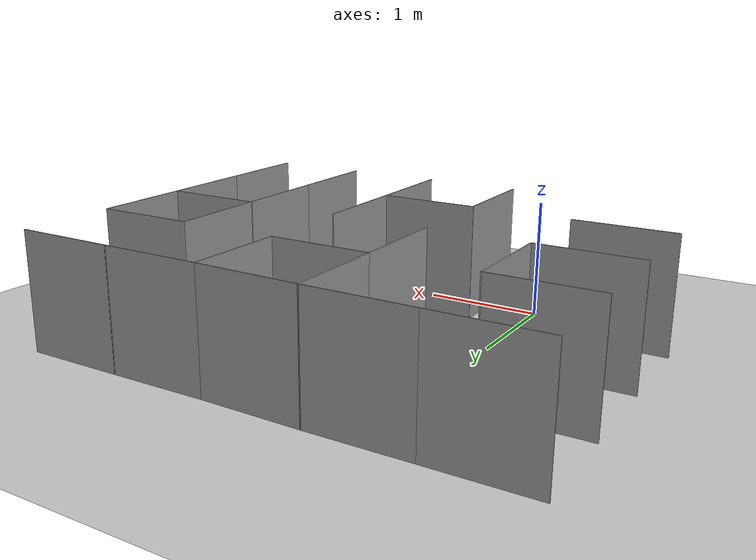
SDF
<sdf version="1.7">
 <world name="default">
  <include><uri>model://sun</uri></include>
  <include><uri>model://ground_plane</uri></include>
  <model name="Lab2">
   <link name="Wall_104">
    <pose>-0.846372 0.424965 0 0 -0 0</pose>
    <visual name="Wall_104_Visual">
     <pose>0 0 0.5 0 -0 0</pose>
     <geometry><box><size>0.86 0.01 1</size></box></geometry>
     <material>
      <script><uri>file://media/materials/scripts/gazebo.material</uri><name>Gazebo/Grey</name></script>
      <ambient>1 1 1 1</ambient>
      <shader type="pixel"/>
     </material>
     <meta><layer>0</layer></meta>
    </visual>
    <collision name="Wall_104_Collision">
     <pose>0 0 0.5 0 -0 0</pose>
     <geometry><box><size>0.86 0.01 1</size></box></geometry>
     <surface>
      <friction>
       <ode><mu>1</mu><mu2>1</mu2><fdir1>0 0 0</fdir1><slip1>0</slip1><slip2>0</slip2></ode>
       <torsional>
        <coefficient>1</coefficient>
        <patch_radius>0</patch_radius>
        <surface_radius>0</surface_radius>
        <use_patch_radius>1</use_patch_radius>
        <ode><slip>0</slip></ode>
       </torsional>
      </friction>
      <bounce><restitution_coefficient>0</restitution_coefficient><threshold>1e+06</threshold></bounce>
      <contact>
       <collide_without_contact>0</collide_without_contact>
       <collide_without_contact_bitmask>1</collide_without_contact_bitmask>
       <collide_bitmask>1</collide_bitmask>
       <ode>
        <soft_cfm>0</soft_cfm>
        <soft_erp>0.2</soft_erp>
        <kp>1e+13</kp>
        <kd>1</kd>
        <max_vel>0.01</max_vel>
        <min_depth>0</min_depth>
       </ode>
       <bullet>
        <split_impulse>1</split_impulse>
        <split_impulse_penetration_threshold>-0.01</split_impulse_penetration_threshold>
        <soft_cfm>0</soft_cfm>
        <soft_erp>0.2</soft_erp>
        <kp>1e+13</kp>
        <kd>1</kd>
       </bullet>
      </contact>
     </surface>
    </collision>
   </link>
   <link name="Wall_108">
    <pose>0.857128 0.424965 0 0 -0 0</pose>
    <visual name="Wall_108_Visual">
     <pose>0 0 0.5 0 -0 0</pose>
     <geometry><box><size>0.853 0.01 1</size></box></geometry>
     <material>
      <script><uri>file://media/materials/scripts/gazebo.material</uri><name>Gazebo/Grey</name></script>
      <ambient>1 1 1 1</ambient>
      <shader type="pixel"/>
     </material>
     <meta><layer>0</layer></meta>
    </visual>
    <collision name="Wall_108_Collision">
     <pose>0 0 0.5 0 -0 0</pose>
     <geometry><box><size>0.853 0.01 1</size></box></geometry>
     <surface>
      <friction>
       <ode><mu>1</mu><mu2>1</mu2><fdir1>0 0 0</fdir1><slip1>0</slip1><slip2>0</slip2></ode>
       <torsional>
        <coefficient>1</coefficient>
        <patch_radius>0</patch_radius>
        <surface_radius>0</surface_radius>
        <use_patch_radius>1</use_patch_radius>
        <ode><slip>0</slip></ode>
       </torsional>
      </friction>
      <bounce><restitution_coefficient>0</restitution_coefficient><threshold>1e+06</threshold></bounce>
      <contact>
       <collide_without_contact>0</collide_without_contact>
       <collide_without_contact_bitmask>1</collide_without_contact_bitmask>
       <collide_bitmask>1</collide_bitmask>
       <ode>
        <soft_cfm>0</soft_cfm>
        <soft_erp>0.2</soft_erp>
        <kp>1e+13</kp>
        <kd>1</kd>
        <max_vel>0.01</max_vel>
        <min_depth>0</min_depth>
       </ode>
       <bullet>
        <split_impulse>1</split_impulse>
        <split_impulse_penetration_threshold>-0.01</split_impulse_penetration_threshold>
        <soft_cfm>0</soft_cfm>
        <soft_erp>0.2</soft_erp>
        <kp>1e+13</kp>
        <kd>1</kd>
       </bullet>
      </contact>
     </surface>
    </collision>
   </link>
   <link name="Wall_109">
    <pose>1.27977 0.853028 0 0 -0 1.56812</pose>
    <visual name="Wall_109_Visual">
     <pose>0 0 0.5 0 -0 0</pose>
     <geometry><box><size>0.866126 0.01 1</size></box></geometry>
     <material>
      <script><uri>file://media/materials/scripts/gazebo.material</uri><name>Gazebo/Grey</name></script>
      <ambient>1 1 1 1</ambient>
      <shader type="pixel"/>
     </material>
     <meta><layer>0</layer></meta>
    </visual>
    <collision name="Wall_109_Collision">
     <pose>0 0 0.5 0 -0 0</pose>
     <geometry><box><size>0.866126 0.01 1</size></box></geometry>
     <surface>
      <friction>
       <ode><mu>1</mu><mu2>1</mu2><fdir1>0 0 0</fdir1><slip1>0</slip1><slip2>0</slip2></ode>
       <torsional>
        <coefficient>1</coefficient>
        <patch_radius>0</patch_radius>
        <surface_radius>0</surface_radius>
        <use_patch_radius>1</use_patch_radius>
        <ode><slip>0</slip></ode>
       </torsional>
      </friction>
      <bounce><restitution_coefficient>0</restitution_coefficient><threshold>1e+06</threshold></bounce>
      <contact>
       <collide_without_contact>0</collide_without_contact>
       <collide_without_contact_bitmask>1</collide_without_contact_bitmask>
       <collide_bitmask>1</collide_bitmask>
       <ode>
        <soft_cfm>0</soft_cfm>
        <soft_erp>0.2</soft_erp>
        <kp>1e+13</kp>
        <kd>1</kd>
        <max_vel>0.01</max_vel>
        <min_depth>0</min_depth>
       </ode>
       <bullet>
        <split_impulse>1</split_impulse>
        <split_impulse_penetration_threshold>-0.01</split_impulse_penetration_threshold>
        <soft_cfm>0</soft_cfm>
        <soft_erp>0.2</soft_erp>
        <kp>1e+13</kp>
        <kd>1</kd>
       </bullet>
      </contact>
     </surface>
    </collision>
   </link>
   <link name="Wall_111">
    <pose>2.12863 0.849965 0 0 0 -1.5708</pose>
    <visual name="Wall_111_Visual">
     <pose>0 0 0.5 0 -0 0</pose>
     <geometry><box><size>0.86 0.01 1</size></box></geometry>
     <material>
      <script><uri>file://media/materials/scripts/gazebo.material</uri><name>Gazebo/Grey</name></script>
      <ambient>1 1 1 1</ambient>
      <shader type="pixel"/>
     </material>
     <meta><layer>0</layer></meta>
    </visual>
    <collision name="Wall_111_Collision">
     <pose>0 0 0.5 0 -0 0</pose>
     <geometry><box><size>0.86 0.01 1</size></box></geometry>
     <surface>
      <friction>
       <ode><mu>1</mu><mu2>1</mu2><fdir1>0 0 0</fdir1><slip1>0</slip1><slip2>0</slip2></ode>
       <torsional>
        <coefficient>1</coefficient>
        <patch_radius>0</patch_radius>
        <surface_radius>0</surface_radius>
        <use_patch_radius>1</use_patch_radius>
        <ode><slip>0</slip></ode>
       </torsional>
      </friction>
      <bounce><restitution_coefficient>0</restitution_coefficient><threshold>1e+06</threshold></bounce>
      <contact>
       <collide_without_contact>0</collide_without_contact>
       <collide_without_contact_bitmask>1</collide_without_contact_bitmask>
       <collide_bitmask>1</collide_bitmask>
       <ode>
        <soft_cfm>0</soft_cfm>
        <soft_erp>0.2</soft_erp>
        <kp>1e+13</kp>
        <kd>1</kd>
        <max_vel>0.01</max_vel>
        <min_depth>0</min_depth>
       </ode>
       <bullet>
        <split_impulse>1</split_impulse>
        <split_impulse_penetration_threshold>-0.01</split_impulse_penetration_threshold>
        <soft_cfm>0</soft_cfm>
        <soft_erp>0.2</soft_erp>
        <kp>1e+13</kp>
        <kd>1</kd>
       </bullet>
      </contact>
     </surface>
    </collision>
   </link>
   <link name="Wall_115">
    <pose>2.55363 1.27496 0 0 -0 3.14159</pose>
    <visual name="Wall_115_Visual">
     <pose>0 0 0.5 0 -0 0</pose>
     <geometry><box><size>0.86 0.01 1</size></box></geometry>
     <material>
      <script><uri>file://media/materials/scripts/gazebo.material</uri><name>Gazebo/Grey</name></script>
      <ambient>1 1 1 1</ambient>
      <shader type="pixel"/>
     </material>
     <meta><layer>0</layer></meta>
    </visual>
    <collision name="Wall_115_Collision">
     <pose>0 0 0.5 0 -0 0</pose>
     <geometry><box><size>0.86 0.01 1</size></box></geometry>
     <surface>
      <friction>
       <ode><mu>1</mu><mu2>1</mu2><fdir1>0 0 0</fdir1><slip1>0</slip1><slip2>0</slip2></ode>
       <torsional>
        <coefficient>1</coefficient>
        <patch_radius>0</patch_radius>
        <surface_radius>0</surface_radius>
        <use_patch_radius>1</use_patch_radius>
        <ode><slip>0</slip></ode>
       </torsional>
      </friction>
      <bounce><restitution_coefficient>0</restitution_coefficient><threshold>1e+06</threshold></bounce>
      <contact>
       <collide_without_contact>0</collide_without_contact>
       <collide_without_contact_bitmask>1</collide_without_contact_bitmask>
       <collide_bitmask>1</collide_bitmask>
       <ode>
        <soft_cfm>0</soft_cfm>
        <soft_erp>0.2</soft_erp>
        <kp>1e+13</kp>
        <kd>1</kd>
        <max_vel>0.01</max_vel>
        <min_depth>0</min_depth>
       </ode>
       <bullet>
        <split_impulse>1</split_impulse>
        <split_impulse_penetration_threshold>-0.01</split_impulse_penetration_threshold>
        <soft_cfm>0</soft_cfm>
        <soft_erp>0.2</soft_erp>
        <kp>1e+13</kp>
        <kd>1</kd>
       </bullet>
      </contact>
     </surface>
    </collision>
   </link>
   <link name="Wall_116">
    <pose>2.12863 1.69996 0 0 -0 1.5708</pose>
    <visual name="Wall_116_Visual">
     <pose>0 0 0.5 0 -0 0</pose>
     <geometry><box><size>0.859555 0.01 1</size></box></geometry>
     <material>
      <script><uri>file://media/materials/scripts/gazebo.material</uri><name>Gazebo/Grey</name></script>
      <ambient>1 1 1 1</ambient>
      <shader type="pixel"/>
     </material>
     <meta><layer>0</layer></meta>
    </visual>
    <collision name="Wall_116_Collision">
     <pose>0 0 0.5 0 -0 0</pose>
     <geometry><box><size>0.859555 0.01 1</size></box></geometry>
     <surface>
      <friction>
       <ode><mu>1</mu><mu2>1</mu2><fdir1>0 0 0</fdir1><slip1>0</slip1><slip2>0</slip2></ode>
       <torsional>
        <coefficient>1</coefficient>
        <patch_radius>0</patch_radius>
        <surface_radius>0</surface_radius>
        <use_patch_radius>1</use_patch_radius>
        <ode><slip>0</slip></ode>
       </torsional>
      </friction>
      <bounce><restitution_coefficient>0</restitution_coefficient><threshold>1e+06</threshold></bounce>
      <contact>
       <collide_without_contact>0</collide_without_contact>
       <collide_without_contact_bitmask>1</collide_without_contact_bitmask>
       <collide_bitmask>1</collide_bitmask>
       <ode>
        <soft_cfm>0</soft_cfm>
        <soft_erp>0.2</soft_erp>
        <kp>1e+13</kp>
        <kd>1</kd>
        <max_vel>0.01</max_vel>
        <min_depth>0</min_depth>
       </ode>
       <bullet>
        <split_impulse>1</split_impulse>
        <split_impulse_penetration_threshold>-0.01</split_impulse_penetration_threshold>
        <soft_cfm>0</soft_cfm>
        <soft_erp>0.2</soft_erp>
        <kp>1e+13</kp>
        <kd>1</kd>
       </bullet>
      </contact>
     </surface>
    </collision>
   </link>
   <link name="Wall_120">
    <pose>0.428628 1.69996 0 0 -0 1.5708</pose>
    <visual name="Wall_120_Visual">
     <pose>0 0 0.5 0 -0 0</pose>
     <geometry><box><size>0.859555 0.01 1</size></box></geometry>
     <material>
      <script><uri>file://media/materials/scripts/gazebo.material</uri><name>Gazebo/Grey</name></script>
      <ambient>1 1 1 1</ambient>
      <shader type="pixel"/>
     </material>
     <meta><layer>0</layer></meta>
    </visual>
    <collision name="Wall_120_Collision">
     <pose>0 0 0.5 0 -0 0</pose>
     <geometry><box><size>0.859555 0.01 1</size></box></geometry>
     <surface>
      <friction>
       <ode><mu>1</mu><mu2>1</mu2><fdir1>0 0 0</fdir1><slip1>0</slip1><slip2>0</slip2></ode>
       <torsional>
        <coefficient>1</coefficient>
        <patch_radius>0</patch_radius>
        <surface_radius>0</surface_radius>
        <use_patch_radius>1</use_patch_radius>
        <ode><slip>0</slip></ode>
       </torsional>
      </friction>
      <bounce><restitution_coefficient>0</restitution_coefficient><threshold>1e+06</threshold></bounce>
      <contact>
       <collide_without_contact>0</collide_without_contact>
       <collide_without_contact_bitmask>1</collide_without_contact_bitmask>
       <collide_bitmask>1</collide_bitmask>
       <ode>
        <soft_cfm>0</soft_cfm>
        <soft_erp>0.2</soft_erp>
        <kp>1e+13</kp>
        <kd>1</kd>
        <max_vel>0.01</max_vel>
        <min_depth>0</min_depth>
       </ode>
       <bullet>
        <split_impulse>1</split_impulse>
        <split_impulse_penetration_threshold>-0.01</split_impulse_penetration_threshold>
        <soft_cfm>0</soft_cfm>
        <soft_erp>0.2</soft_erp>
        <kp>1e+13</kp>
        <kd>1</kd>
       </bullet>
      </contact>
     </surface>
    </collision>
   </link>
   <link name="Wall_122">
    <pose>-0.421372 1.69996 0 0 0 -1.5708</pose>
    <visual name="Wall_122_Visual">
     <pose>0 0 0.5 0 -0 0</pose>
     <geometry><box><size>0.86 0.01 1</size></box></geometry>
     <material>
      <script><uri>file://media/materials/scripts/gazebo.material</uri><name>Gazebo/Grey</name></script>
      <ambient>1 1 1 1</ambient>
      <shader type="pixel"/>
     </material>
     <meta><layer>0</layer></meta>
    </visual>
    <collision name="Wall_122_Collision">
     <pose>0 0 0.5 0 -0 0</pose>
     <geometry><box><size>0.86 0.01 1</size></box></geometry>
     <surface>
      <friction>
       <ode><mu>1</mu><mu2>1</mu2><fdir1>0 0 0</fdir1><slip1>0</slip1><slip2>0</slip2></ode>
       <torsional>
        <coefficient>1</coefficient>
        <patch_radius>0</patch_radius>
        <surface_radius>0</surface_radius>
        <use_patch_radius>1</use_patch_radius>
        <ode><slip>0</slip></ode>
       </torsional>
      </friction>
      <bounce><restitution_coefficient>0</restitution_coefficient><threshold>1e+06</threshold></bounce>
      <contact>
       <collide_without_contact>0</collide_without_contact>
       <collide_without_contact_bitmask>1</collide_without_contact_bitmask>
       <collide_bitmask>1</collide_bitmask>
       <ode>
        <soft_cfm>0</soft_cfm>
        <soft_erp>0.2</soft_erp>
        <kp>1e+13</kp>
        <kd>1</kd>
        <max_vel>0.01</max_vel>
        <min_depth>0</min_depth>
       </ode>
       <bullet>
        <split_impulse>1</split_impulse>
        <split_impulse_penetration_threshold>-0.01</split_impulse_penetration_threshold>
        <soft_cfm>0</soft_cfm>
        <soft_erp>0.2</soft_erp>
        <kp>1e+13</kp>
        <kd>1</kd>
       </bullet>
      </contact>
     </surface>
    </collision>
   </link>
   <link name="Wall_123">
    <pose>-0.846372 1.27496 0 0 -0 3.14159</pose>
    <visual name="Wall_123_Visual">
     <pose>0 0 0.5 0 -0 0</pose>
     <geometry><box><size>0.86 0.01 1</size></box></geometry>
     <material>
      <script><uri>file://media/materials/scripts/gazebo.material</uri><name>Gazebo/Grey</name></script>
      <ambient>1 1 1 1</ambient>
      <shader type="pixel"/>
     </material>
     <meta><layer>0</layer></meta>
    </visual>
    <collision name="Wall_123_Collision">
     <pose>0 0 0.5 0 -0 0</pose>
     <geometry><box><size>0.86 0.01 1</size></box></geometry>
     <surface>
      <friction>
       <ode><mu>1</mu><mu2>1</mu2><fdir1>0 0 0</fdir1><slip1>0</slip1><slip2>0</slip2></ode>
       <torsional>
        <coefficient>1</coefficient>
        <patch_radius>0</patch_radius>
        <surface_radius>0</surface_radius>
        <use_patch_radius>1</use_patch_radius>
        <ode><slip>0</slip></ode>
       </torsional>
      </friction>
      <bounce><restitution_coefficient>0</restitution_coefficient><threshold>1e+06</threshold></bounce>
      <contact>
       <collide_without_contact>0</collide_without_contact>
       <collide_without_contact_bitmask>1</collide_without_contact_bitmask>
       <collide_bitmask>1</collide_bitmask>
       <ode>
        <soft_cfm>0</soft_cfm>
        <soft_erp>0.2</soft_erp>
        <kp>1e+13</kp>
        <kd>1</kd>
        <max_vel>0.01</max_vel>
        <min_depth>0</min_depth>
       </ode>
       <bullet>
        <split_impulse>1</split_impulse>
        <split_impulse_penetration_threshold>-0.01</split_impulse_penetration_threshold>
        <soft_cfm>0</soft_cfm>
        <soft_erp>0.2</soft_erp>
        <kp>1e+13</kp>
        <kd>1</kd>
       </bullet>
      </contact>
     </surface>
    </collision>
   </link>
   <link name="Wall_133">
    <pose>-0.846372 2.12496 0 0 -0 0</pose>
    <visual name="Wall_133_Visual">
     <pose>0 0 0.5 0 -0 0</pose>
     <geometry><box><size>0.86 0.01 1</size></box></geometry>
     <material>
      <script><uri>file://media/materials/scripts/gazebo.material</uri><name>Gazebo/Grey</name></script>
      <ambient>1 1 1 1</ambient>
      <shader type="pixel"/>
     </material>
     <meta><layer>0</layer></meta>
    </visual>
    <collision name="Wall_133_Collision">
     <pose>0 0 0.5 0 -0 0</pose>
     <geometry><box><size>0.86 0.01 1</size></box></geometry>
     <surface>
      <friction>
       <ode><mu>1</mu><mu2>1</mu2><fdir1>0 0 0</fdir1><slip1>0</slip1><slip2>0</slip2></ode>
       <torsional>
        <coefficient>1</coefficient>
        <patch_radius>0</patch_radius>
        <surface_radius>0</surface_radius>
        <use_patch_radius>1</use_patch_radius>
        <ode><slip>0</slip></ode>
       </torsional>
      </friction>
      <bounce><restitution_coefficient>0</restitution_coefficient><threshold>1e+06</threshold></bounce>
      <contact>
       <collide_without_contact>0</collide_without_contact>
       <collide_without_contact_bitmask>1</collide_without_contact_bitmask>
       <collide_bitmask>1</collide_bitmask>
       <ode>
        <soft_cfm>0</soft_cfm>
        <soft_erp>0.2</soft_erp>
        <kp>1e+13</kp>
        <kd>1</kd>
        <max_vel>0.01</max_vel>
        <min_depth>0</min_depth>
       </ode>
       <bullet>
        <split_impulse>1</split_impulse>
        <split_impulse_penetration_threshold>-0.01</split_impulse_penetration_threshold>
        <soft_cfm>0</soft_cfm>
        <soft_erp>0.2</soft_erp>
        <kp>1e+13</kp>
        <kd>1</kd>
       </bullet>
      </contact>
     </surface>
    </collision>
   </link>
   <link name="Wall_136">
    <pose>0.428628 2.54996 0 0 0 -1.5708</pose>
    <visual name="Wall_136_Visual">
     <pose>0 0 0.5 0 -0 0</pose>
     <geometry><box><size>0.86 0.01 1</size></box></geometry>
     <material>
      <script><uri>file://media/materials/scripts/gazebo.material</uri><name>Gazebo/Grey</name></script>
      <ambient>1 1 1 1</ambient>
      <shader type="pixel"/>
     </material>
     <meta><layer>0</layer></meta>
    </visual>
    <collision name="Wall_136_Collision">
     <pose>0 0 0.5 0 -0 0</pose>
     <geometry><box><size>0.86 0.01 1</size></box></geometry>
     <surface>
      <friction>
       <ode><mu>1</mu><mu2>1</mu2><fdir1>0 0 0</fdir1><slip1>0</slip1><slip2>0</slip2></ode>
       <torsional>
        <coefficient>1</coefficient>
        <patch_radius>0</patch_radius>
        <surface_radius>0</surface_radius>
        <use_patch_radius>1</use_patch_radius>
        <ode><slip>0</slip></ode>
       </torsional>
      </friction>
      <bounce><restitution_coefficient>0</restitution_coefficient><threshold>1e+06</threshold></bounce>
      <contact>
       <collide_without_contact>0</collide_without_contact>
       <collide_without_contact_bitmask>1</collide_without_contact_bitmask>
       <collide_bitmask>1</collide_bitmask>
       <ode>
        <soft_cfm>0</soft_cfm>
        <soft_erp>0.2</soft_erp>
        <kp>1e+13</kp>
        <kd>1</kd>
        <max_vel>0.01</max_vel>
        <min_depth>0</min_depth>
       </ode>
       <bullet>
        <split_impulse>1</split_impulse>
        <split_impulse_penetration_threshold>-0.01</split_impulse_penetration_threshold>
        <soft_cfm>0</soft_cfm>
        <soft_erp>0.2</soft_erp>
        <kp>1e+13</kp>
        <kd>1</kd>
       </bullet>
      </contact>
     </surface>
    </collision>
   </link>
   <link name="Wall_137">
    <pose>0.850196 2.12496 0 0 -0 0</pose>
    <visual name="Wall_137_Visual">
     <pose>0 0 0.5 0 -0 0</pose>
     <geometry><box><size>0.853136 0.01 1</size></box></geometry>
     <material>
      <script><uri>file://media/materials/scripts/gazebo.material</uri><name>Gazebo/Grey</name></script>
      <ambient>1 1 1 1</ambient>
      <shader type="pixel"/>
     </material>
     <meta><layer>0</layer></meta>
    </visual>
    <collision name="Wall_137_Collision">
     <pose>0 0 0.5 0 -0 0</pose>
     <geometry><box><size>0.853136 0.01 1</size></box></geometry>
     <surface>
      <friction>
       <ode><mu>1</mu><mu2>1</mu2><fdir1>0 0 0</fdir1><slip1>0</slip1><slip2>0</slip2></ode>
       <torsional>
        <coefficient>1</coefficient>
        <patch_radius>0</patch_radius>
        <surface_radius>0</surface_radius>
        <use_patch_radius>1</use_patch_radius>
        <ode><slip>0</slip></ode>
       </torsional>
      </friction>
      <bounce><restitution_coefficient>0</restitution_coefficient><threshold>1e+06</threshold></bounce>
      <contact>
       <collide_without_contact>0</collide_without_contact>
       <collide_without_contact_bitmask>1</collide_without_contact_bitmask>
       <collide_bitmask>1</collide_bitmask>
       <ode>
        <soft_cfm>0</soft_cfm>
        <soft_erp>0.2</soft_erp>
        <kp>1e+13</kp>
        <kd>1</kd>
        <max_vel>0.01</max_vel>
        <min_depth>0</min_depth>
       </ode>
       <bullet>
        <split_impulse>1</split_impulse>
        <split_impulse_penetration_threshold>-0.01</split_impulse_penetration_threshold>
        <soft_cfm>0</soft_cfm>
        <soft_erp>0.2</soft_erp>
        <kp>1e+13</kp>
        <kd>1</kd>
       </bullet>
      </contact>
     </surface>
    </collision>
   </link>
   <link name="Wall_138">
    <pose>1.2802 2.54147 0 0 -0 1.55055</pose>
    <visual name="Wall_138_Visual">
     <pose>0 0 0.5 0 -0 0</pose>
     <geometry><box><size>0.84306 0.01 1</size></box></geometry>
     <material>
      <script><uri>file://media/materials/scripts/gazebo.material</uri><name>Gazebo/Grey</name></script>
      <ambient>1 1 1 1</ambient>
      <shader type="pixel"/>
     </material>
     <meta><layer>0</layer></meta>
    </visual>
    <collision name="Wall_138_Collision">
     <pose>0 0 0.5 0 -0 0</pose>
     <geometry><box><size>0.84306 0.01 1</size></box></geometry>
     <surface>
      <friction>
       <ode><mu>1</mu><mu2>1</mu2><fdir1>0 0 0</fdir1><slip1>0</slip1><slip2>0</slip2></ode>
       <torsional>
        <coefficient>1</coefficient>
        <patch_radius>0</patch_radius>
        <surface_radius>0</surface_radius>
        <use_patch_radius>1</use_patch_radius>
        <ode><slip>0</slip></ode>
       </torsional>
      </friction>
      <bounce><restitution_coefficient>0</restitution_coefficient><threshold>1e+06</threshold></bounce>
      <contact>
       <collide_without_contact>0</collide_without_contact>
       <collide_without_contact_bitmask>1</collide_without_contact_bitmask>
       <collide_bitmask>1</collide_bitmask>
       <ode>
        <soft_cfm>0</soft_cfm>
        <soft_erp>0.2</soft_erp>
        <kp>1e+13</kp>
        <kd>1</kd>
        <max_vel>0.01</max_vel>
        <min_depth>0</min_depth>
       </ode>
       <bullet>
        <split_impulse>1</split_impulse>
        <split_impulse_penetration_threshold>-0.01</split_impulse_penetration_threshold>
        <soft_cfm>0</soft_cfm>
        <soft_erp>0.2</soft_erp>
        <kp>1e+13</kp>
        <kd>1</kd>
       </bullet>
      </contact>
     </surface>
    </collision>
   </link>
   <link name="Wall_141">
    <pose>2.55363 2.12496 0 0 -0 0</pose>
    <visual name="Wall_141_Visual">
     <pose>0 0 0.5 0 -0 0</pose>
     <geometry><box><size>0.86 0.01 1</size></box></geometry>
     <material>
      <script><uri>file://media/materials/scripts/gazebo.material</uri><name>Gazebo/Grey</name></script>
      <ambient>1 1 1 1</ambient>
      <shader type="pixel"/>
     </material>
     <meta><layer>0</layer></meta>
    </visual>
    <collision name="Wall_141_Collision">
     <pose>0 0 0.5 0 -0 0</pose>
     <geometry><box><size>0.86 0.01 1</size></box></geometry>
     <surface>
      <friction>
       <ode><mu>1</mu><mu2>1</mu2><fdir1>0 0 0</fdir1><slip1>0</slip1><slip2>0</slip2></ode>
       <torsional>
        <coefficient>1</coefficient>
        <patch_radius>0</patch_radius>
        <surface_radius>0</surface_radius>
        <use_patch_radius>1</use_patch_radius>
        <ode><slip>0</slip></ode>
       </torsional>
      </friction>
      <bounce><restitution_coefficient>0</restitution_coefficient><threshold>1e+06</threshold></bounce>
      <contact>
       <collide_without_contact>0</collide_without_contact>
       <collide_without_contact_bitmask>1</collide_without_contact_bitmask>
       <collide_bitmask>1</collide_bitmask>
       <ode>
        <soft_cfm>0</soft_cfm>
        <soft_erp>0.2</soft_erp>
        <kp>1e+13</kp>
        <kd>1</kd>
        <max_vel>0.01</max_vel>
        <min_depth>0</min_depth>
       </ode>
       <bullet>
        <split_impulse>1</split_impulse>
        <split_impulse_penetration_threshold>-0.01</split_impulse_penetration_threshold>
        <soft_cfm>0</soft_cfm>
        <soft_erp>0.2</soft_erp>
        <kp>1e+13</kp>
        <kd>1</kd>
       </bullet>
      </contact>
     </surface>
    </collision>
   </link>
   <link name="Wall_143">
    <pose>2.55513 2.96197 0 0 -0 3.14159</pose>
    <visual name="Wall_143_Visual">
     <pose>0 0 0.5 0 -0 0</pose>
     <geometry><box><size>0.865 0.01 1</size></box></geometry>
     <material>
      <script><uri>file://media/materials/scripts/gazebo.material</uri><name>Gazebo/Grey</name></script>
      <ambient>1 1 1 1</ambient>
      <shader type="pixel"/>
     </material>
     <meta><layer>0</layer></meta>
    </visual>
    <collision name="Wall_143_Collision">
     <pose>0 0 0.5 0 -0 0</pose>
     <geometry><box><size>0.865 0.01 1</size></box></geometry>
     <surface>
      <friction>
       <ode><mu>1</mu><mu2>1</mu2><fdir1>0 0 0</fdir1><slip1>0</slip1><slip2>0</slip2></ode>
       <torsional>
        <coefficient>1</coefficient>
        <patch_radius>0</patch_radius>
        <surface_radius>0</surface_radius>
        <use_patch_radius>1</use_patch_radius>
        <ode><slip>0</slip></ode>
       </torsional>
      </friction>
      <bounce><restitution_coefficient>0</restitution_coefficient><threshold>1e+06</threshold></bounce>
      <contact>
       <collide_without_contact>0</collide_without_contact>
       <collide_without_contact_bitmask>1</collide_without_contact_bitmask>
       <collide_bitmask>1</collide_bitmask>
       <ode>
        <soft_cfm>0</soft_cfm>
        <soft_erp>0.2</soft_erp>
        <kp>1e+13</kp>
        <kd>1</kd>
        <max_vel>0.01</max_vel>
        <min_depth>0</min_depth>
       </ode>
       <bullet>
        <split_impulse>1</split_impulse>
        <split_impulse_penetration_threshold>-0.01</split_impulse_penetration_threshold>
        <soft_cfm>0</soft_cfm>
        <soft_erp>0.2</soft_erp>
        <kp>1e+13</kp>
        <kd>1</kd>
       </bullet>
      </contact>
     </surface>
    </collision>
   </link>
   <link name="Wall_144">
    <pose>1.70813 2.95996 0 0 0 -3.13682</pose>
    <visual name="Wall_144_Visual">
     <pose>0 0 0.5 0 -0 0</pose>
     <geometry><box><size>0.84901 0.01 1</size></box></geometry>
     <material>
      <script><uri>file://media/materials/scripts/gazebo.material</uri><name>Gazebo/Grey</name></script>
      <ambient>1 1 1 1</ambient>
      <shader type="pixel"/>
     </material>
     <meta><layer>0</layer></meta>
    </visual>
    <collision name="Wall_144_Collision">
     <pose>0 0 0.5 0 -0 0</pose>
     <geometry><box><size>0.84901 0.01 1</size></box></geometry>
     <surface>
      <friction>
       <ode><mu>1</mu><mu2>1</mu2><fdir1>0 0 0</fdir1><slip1>0</slip1><slip2>0</slip2></ode>
       <torsional>
        <coefficient>1</coefficient>
        <patch_radius>0</patch_radius>
        <surface_radius>0</surface_radius>
        <use_patch_radius>1</use_patch_radius>
        <ode><slip>0</slip></ode>
       </torsional>
      </friction>
      <bounce><restitution_coefficient>0</restitution_coefficient><threshold>1e+06</threshold></bounce>
      <contact>
       <collide_without_contact>0</collide_without_contact>
       <collide_without_contact_bitmask>1</collide_without_contact_bitmask>
       <collide_bitmask>1</collide_bitmask>
       <ode>
        <soft_cfm>0</soft_cfm>
        <soft_erp>0.2</soft_erp>
        <kp>1e+13</kp>
        <kd>1</kd>
        <max_vel>0.01</max_vel>
        <min_depth>0</min_depth>
       </ode>
       <bullet>
        <split_impulse>1</split_impulse>
        <split_impulse_penetration_threshold>-0.01</split_impulse_penetration_threshold>
        <soft_cfm>0</soft_cfm>
        <soft_erp>0.2</soft_erp>
        <kp>1e+13</kp>
        <kd>1</kd>
       </bullet>
      </contact>
     </surface>
    </collision>
   </link>
   <link name="Wall_145">
    <pose>0.858628 2.96646 0 0 -0 3.12183</pose>
    <visual name="Wall_145_Visual">
     <pose>0 0 0.5 0 -0 0</pose>
     <geometry><box><size>0.870168 0.01 1</size></box></geometry>
     <material>
      <script><uri>file://media/materials/scripts/gazebo.material</uri><name>Gazebo/Grey</name></script>
      <ambient>1 1 1 1</ambient>
      <shader type="pixel"/>
     </material>
     <meta><layer>0</layer></meta>
    </visual>
    <collision name="Wall_145_Collision">
     <pose>0 0 0.5 0 -0 0</pose>
     <geometry><box><size>0.870168 0.01 1</size></box></geometry>
     <surface>
      <friction>
       <ode><mu>1</mu><mu2>1</mu2><fdir1>0 0 0</fdir1><slip1>0</slip1><slip2>0</slip2></ode>
       <torsional>
        <coefficient>1</coefficient>
        <patch_radius>0</patch_radius>
        <surface_radius>0</surface_radius>
        <use_patch_radius>1</use_patch_radius>
        <ode><slip>0</slip></ode>
       </torsional>
      </friction>
      <bounce><restitution_coefficient>0</restitution_coefficient><threshold>1e+06</threshold></bounce>
      <contact>
       <collide_without_contact>0</collide_without_contact>
       <collide_without_contact_bitmask>1</collide_without_contact_bitmask>
       <collide_bitmask>1</collide_bitmask>
       <ode>
        <soft_cfm>0</soft_cfm>
        <soft_erp>0.2</soft_erp>
        <kp>1e+13</kp>
        <kd>1</kd>
        <max_vel>0.01</max_vel>
        <min_depth>0</min_depth>
       </ode>
       <bullet>
        <split_impulse>1</split_impulse>
        <split_impulse_penetration_threshold>-0.01</split_impulse_penetration_threshold>
        <soft_cfm>0</soft_cfm>
        <soft_erp>0.2</soft_erp>
        <kp>1e+13</kp>
        <kd>1</kd>
       </bullet>
      </contact>
     </surface>
    </collision>
   </link>
   <link name="Wall_146">
    <pose>0.003628 2.97497 0 0 -0 3.14159</pose>
    <visual name="Wall_146_Visual">
     <pose>0 0 0.5 0 -0 0</pose>
     <geometry><box><size>0.86 0.01 1</size></box></geometry>
     <material>
      <script><uri>file://media/materials/scripts/gazebo.material</uri><name>Gazebo/Grey</name></script>
      <ambient>1 1 1 1</ambient>
      <shader type="pixel"/>
     </material>
     <meta><layer>0</layer></meta>
    </visual>
    <collision name="Wall_146_Collision">
     <pose>0 0 0.5 0 -0 0</pose>
     <geometry><box><size>0.86 0.01 1</size></box></geometry>
     <surface>
      <friction>
       <ode><mu>1</mu><mu2>1</mu2><fdir1>0 0 0</fdir1><slip1>0</slip1><slip2>0</slip2></ode>
       <torsional>
        <coefficient>1</coefficient>
        <patch_radius>0</patch_radius>
        <surface_radius>0</surface_radius>
        <use_patch_radius>1</use_patch_radius>
        <ode><slip>0</slip></ode>
       </torsional>
      </friction>
      <bounce><restitution_coefficient>0</restitution_coefficient><threshold>1e+06</threshold></bounce>
      <contact>
       <collide_without_contact>0</collide_without_contact>
       <collide_without_contact_bitmask>1</collide_without_contact_bitmask>
       <collide_bitmask>1</collide_bitmask>
       <ode>
        <soft_cfm>0</soft_cfm>
        <soft_erp>0.2</soft_erp>
        <kp>1e+13</kp>
        <kd>1</kd>
        <max_vel>0.01</max_vel>
        <min_depth>0</min_depth>
       </ode>
       <bullet>
        <split_impulse>1</split_impulse>
        <split_impulse_penetration_threshold>-0.01</split_impulse_penetration_threshold>
        <soft_cfm>0</soft_cfm>
        <soft_erp>0.2</soft_erp>
        <kp>1e+13</kp>
        <kd>1</kd>
       </bullet>
      </contact>
     </surface>
    </collision>
   </link>
   <link name="Wall_147">
    <pose>-0.846372 2.97497 0 0 -0 3.14159</pose>
    <visual name="Wall_147_Visual">
     <pose>0 0 0.5 0 -0 0</pose>
     <geometry><box><size>0.86 0.01 1</size></box></geometry>
     <material>
      <script><uri>file://media/materials/scripts/gazebo.material</uri><name>Gazebo/Grey</name></script>
      <ambient>1 1 1 1</ambient>
      <shader type="pixel"/>
     </material>
     <meta><layer>0</layer></meta>
    </visual>
    <collision name="Wall_147_Collision">
     <pose>0 0 0.5 0 -0 0</pose>
     <geometry><box><size>0.86 0.01 1</size></box></geometry>
     <surface>
      <friction>
       <ode><mu>1</mu><mu2>1</mu2><fdir1>0 0 0</fdir1><slip1>0</slip1><slip2>0</slip2></ode>
       <torsional>
        <coefficient>1</coefficient>
        <patch_radius>0</patch_radius>
        <surface_radius>0</surface_radius>
        <use_patch_radius>1</use_patch_radius>
        <ode><slip>0</slip></ode>
       </torsional>
      </friction>
      <bounce><restitution_coefficient>0</restitution_coefficient><threshold>1e+06</threshold></bounce>
      <contact>
       <collide_without_contact>0</collide_without_contact>
       <collide_without_contact_bitmask>1</collide_without_contact_bitmask>
       <collide_bitmask>1</collide_bitmask>
       <ode>
        <soft_cfm>0</soft_cfm>
        <soft_erp>0.2</soft_erp>
        <kp>1e+13</kp>
        <kd>1</kd>
        <max_vel>0.01</max_vel>
        <min_depth>0</min_depth>
       </ode>
       <bullet>
        <split_impulse>1</split_impulse>
        <split_impulse_penetration_threshold>-0.01</split_impulse_penetration_threshold>
        <soft_cfm>0</soft_cfm>
        <soft_erp>0.2</soft_erp>
        <kp>1e+13</kp>
        <kd>1</kd>
       </bullet>
      </contact>
     </surface>
    </collision>
   </link>
   <link name="Wall_167">
    <pose>2.97863 -3.5e-05 0 0 -0 1.5708</pose>
    <visual name="Wall_167_Visual">
     <pose>0 0 0.5 0 -0 0</pose>
     <geometry><box><size>0.859555 0.01 1</size></box></geometry>
     <material>
      <script><uri>file://media/materials/scripts/gazebo.material</uri><name>Gazebo/Grey</name></script>
      <ambient>1 1 1 1</ambient>
      <shader type="pixel"/>
     </material>
     <meta><layer>0</layer></meta>
    </visual>
    <collision name="Wall_167_Collision">
     <pose>0 0 0.5 0 -0 0</pose>
     <geometry><box><size>0.859555 0.01 1</size></box></geometry>
     <surface>
      <friction>
       <ode><mu>1</mu><mu2>1</mu2><fdir1>0 0 0</fdir1><slip1>0</slip1><slip2>0</slip2></ode>
       <torsional>
        <coefficient>1</coefficient>
        <patch_radius>0</patch_radius>
        <surface_radius>0</surface_radius>
        <use_patch_radius>1</use_patch_radius>
        <ode><slip>0</slip></ode>
       </torsional>
      </friction>
      <bounce><restitution_coefficient>0</restitution_coefficient><threshold>1e+06</threshold></bounce>
      <contact>
       <collide_without_contact>0</collide_without_contact>
       <collide_without_contact_bitmask>1</collide_without_contact_bitmask>
       <collide_bitmask>1</collide_bitmask>
       <ode>
        <soft_cfm>0</soft_cfm>
        <soft_erp>0.2</soft_erp>
        <kp>1e+13</kp>
        <kd>1</kd>
        <max_vel>0.01</max_vel>
        <min_depth>0</min_depth>
       </ode>
       <bullet>
        <split_impulse>1</split_impulse>
        <split_impulse_penetration_threshold>-0.01</split_impulse_penetration_threshold>
        <soft_cfm>0</soft_cfm>
        <soft_erp>0.2</soft_erp>
        <kp>1e+13</kp>
        <kd>1</kd>
       </bullet>
      </contact>
     </surface>
    </collision>
   </link>
   <link name="Wall_168">
    <pose>2.97863 0.849965 0 0 -0 1.5708</pose>
    <visual name="Wall_168_Visual">
     <pose>0 0 0.5 0 -0 0</pose>
     <geometry><box><size>0.859555 0.01 1</size></box></geometry>
     <material>
      <script><uri>file://media/materials/scripts/gazebo.material</uri><name>Gazebo/Grey</name></script>
      <ambient>1 1 1 1</ambient>
      <shader type="pixel"/>
     </material>
     <meta><layer>0</layer></meta>
    </visual>
    <collision name="Wall_168_Collision">
     <pose>0 0 0.5 0 -0 0</pose>
     <geometry><box><size>0.859555 0.01 1</size></box></geometry>
     <surface>
      <friction>
       <ode><mu>1</mu><mu2>1</mu2><fdir1>0 0 0</fdir1><slip1>0</slip1><slip2>0</slip2></ode>
       <torsional>
        <coefficient>1</coefficient>
        <patch_radius>0</patch_radius>
        <surface_radius>0</surface_radius>
        <use_patch_radius>1</use_patch_radius>
        <ode><slip>0</slip></ode>
       </torsional>
      </friction>
      <bounce><restitution_coefficient>0</restitution_coefficient><threshold>1e+06</threshold></bounce>
      <contact>
       <collide_without_contact>0</collide_without_contact>
       <collide_without_contact_bitmask>1</collide_without_contact_bitmask>
       <collide_bitmask>1</collide_bitmask>
       <ode>
        <soft_cfm>0</soft_cfm>
        <soft_erp>0.2</soft_erp>
        <kp>1e+13</kp>
        <kd>1</kd>
        <max_vel>0.01</max_vel>
        <min_depth>0</min_depth>
       </ode>
       <bullet>
        <split_impulse>1</split_impulse>
        <split_impulse_penetration_threshold>-0.01</split_impulse_penetration_threshold>
        <soft_cfm>0</soft_cfm>
        <soft_erp>0.2</soft_erp>
        <kp>1e+13</kp>
        <kd>1</kd>
       </bullet>
      </contact>
     </surface>
    </collision>
   </link>
   <link name="Wall_169">
    <pose>2.97863 1.69996 0 0 -0 1.5708</pose>
    <visual name="Wall_169_Visual">
     <pose>0 0 0.5 0 -0 0</pose>
     <geometry><box><size>0.859555 0.01 1</size></box></geometry>
     <material>
      <script><uri>file://media/materials/scripts/gazebo.material</uri><name>Gazebo/Grey</name></script>
      <ambient>1 1 1 1</ambient>
      <shader type="pixel"/>
     </material>
     <meta><layer>0</layer></meta>
    </visual>
    <collision name="Wall_169_Collision">
     <pose>0 0 0.5 0 -0 0</pose>
     <geometry><box><size>0.859555 0.01 1</size></box></geometry>
     <surface>
      <friction>
       <ode><mu>1</mu><mu2>1</mu2><fdir1>0 0 0</fdir1><slip1>0</slip1><slip2>0</slip2></ode>
       <torsional>
        <coefficient>1</coefficient>
        <patch_radius>0</patch_radius>
        <surface_radius>0</surface_radius>
        <use_patch_radius>1</use_patch_radius>
        <ode><slip>0</slip></ode>
       </torsional>
      </friction>
      <bounce><restitution_coefficient>0</restitution_coefficient><threshold>1e+06</threshold></bounce>
      <contact>
       <collide_without_contact>0</collide_without_contact>
       <collide_without_contact_bitmask>1</collide_without_contact_bitmask>
       <collide_bitmask>1</collide_bitmask>
       <ode>
        <soft_cfm>0</soft_cfm>
        <soft_erp>0.2</soft_erp>
        <kp>1e+13</kp>
        <kd>1</kd>
        <max_vel>0.01</max_vel>
        <min_depth>0</min_depth>
       </ode>
       <bullet>
        <split_impulse>1</split_impulse>
        <split_impulse_penetration_threshold>-0.01</split_impulse_penetration_threshold>
        <soft_cfm>0</soft_cfm>
        <soft_erp>0.2</soft_erp>
        <kp>1e+13</kp>
        <kd>1</kd>
       </bullet>
      </contact>
     </surface>
    </collision>
   </link>
   <link name="Wall_87">
    <pose>2.12863 -3.5e-05 0 0 -0 1.5708</pose>
    <visual name="Wall_87_Visual">
     <pose>0 0 0.5 0 -0 0</pose>
     <geometry><box><size>0.86 0.01 1</size></box></geometry>
     <material>
      <script><uri>file://media/materials/scripts/gazebo.material</uri><name>Gazebo/Grey</name></script>
      <ambient>1 1 1 1</ambient>
      <shader type="pixel"/>
     </material>
     <meta><layer>0</layer></meta>
    </visual>
    <collision name="Wall_87_Collision">
     <pose>0 0 0.5 0 -0 0</pose>
     <geometry><box><size>0.86 0.01 1</size></box></geometry>
     <surface>
      <friction>
       <ode><mu>1</mu><mu2>1</mu2><fdir1>0 0 0</fdir1><slip1>0</slip1><slip2>0</slip2></ode>
       <torsional>
        <coefficient>1</coefficient>
        <patch_radius>0</patch_radius>
        <surface_radius>0</surface_radius>
        <use_patch_radius>1</use_patch_radius>
        <ode><slip>0</slip></ode>
       </torsional>
      </friction>
      <bounce><restitution_coefficient>0</restitution_coefficient><threshold>1e+06</threshold></bounce>
      <contact>
       <collide_without_contact>0</collide_without_contact>
       <collide_without_contact_bitmask>1</collide_without_contact_bitmask>
       <collide_bitmask>1</collide_bitmask>
       <ode>
        <soft_cfm>0</soft_cfm>
        <soft_erp>0.2</soft_erp>
        <kp>1e+13</kp>
        <kd>1</kd>
        <max_vel>0.01</max_vel>
        <min_depth>0</min_depth>
       </ode>
       <bullet>
        <split_impulse>1</split_impulse>
        <split_impulse_penetration_threshold>-0.01</split_impulse_penetration_threshold>
        <soft_cfm>0</soft_cfm>
        <soft_erp>0.2</soft_erp>
        <kp>1e+13</kp>
        <kd>1</kd>
       </bullet>
      </contact>
     </surface>
    </collision>
   </link>
   <link name="Wall_89">
    <pose>1.27863 -3.5e-05 0 0 0 -1.5708</pose>
    <visual name="Wall_89_Visual">
     <pose>0 0 0.5 0 -0 0</pose>
     <geometry><box><size>0.86 0.01 1</size></box></geometry>
     <material>
      <script><uri>file://media/materials/scripts/gazebo.material</uri><name>Gazebo/Grey</name></script>
      <ambient>1 1 1 1</ambient>
      <shader type="pixel"/>
     </material>
     <meta><layer>0</layer></meta>
    </visual>
    <collision name="Wall_89_Collision">
     <pose>0 0 0.5 0 -0 0</pose>
     <geometry><box><size>0.86 0.01 1</size></box></geometry>
     <surface>
      <friction>
       <ode><mu>1</mu><mu2>1</mu2><fdir1>0 0 0</fdir1><slip1>0</slip1><slip2>0</slip2></ode>
       <torsional>
        <coefficient>1</coefficient>
        <patch_radius>0</patch_radius>
        <surface_radius>0</surface_radius>
        <use_patch_radius>1</use_patch_radius>
        <ode><slip>0</slip></ode>
       </torsional>
      </friction>
      <bounce><restitution_coefficient>0</restitution_coefficient><threshold>1e+06</threshold></bounce>
      <contact>
       <collide_without_contact>0</collide_without_contact>
       <collide_without_contact_bitmask>1</collide_without_contact_bitmask>
       <collide_bitmask>1</collide_bitmask>
       <ode>
        <soft_cfm>0</soft_cfm>
        <soft_erp>0.2</soft_erp>
        <kp>1e+13</kp>
        <kd>1</kd>
        <max_vel>0.01</max_vel>
        <min_depth>0</min_depth>
       </ode>
       <bullet>
        <split_impulse>1</split_impulse>
        <split_impulse_penetration_threshold>-0.01</split_impulse_penetration_threshold>
        <soft_cfm>0</soft_cfm>
        <soft_erp>0.2</soft_erp>
        <kp>1e+13</kp>
        <kd>1</kd>
       </bullet>
      </contact>
     </surface>
    </collision>
   </link>
   <link name="Wall_91">
    <pose>0.435128 -3.5e-05 0 0 -0 1.56962</pose>
    <visual name="Wall_91_Visual">
     <pose>0 0 0.5 0 -0 0</pose>
     <geometry><box><size>0.859555 0.01 1</size></box></geometry>
     <material>
      <script><uri>file://media/materials/scripts/gazebo.material</uri><name>Gazebo/Grey</name></script>
      <ambient>1 1 1 1</ambient>
      <shader type="pixel"/>
     </material>
     <meta><layer>0</layer></meta>
    </visual>
    <collision name="Wall_91_Collision">
     <pose>0 0 0.5 0 -0 0</pose>
     <geometry><box><size>0.859555 0.01 1</size></box></geometry>
     <surface>
      <friction>
       <ode><mu>1</mu><mu2>1</mu2><fdir1>0 0 0</fdir1><slip1>0</slip1><slip2>0</slip2></ode>
       <torsional>
        <coefficient>1</coefficient>
        <patch_radius>0</patch_radius>
        <surface_radius>0</surface_radius>
        <use_patch_radius>1</use_patch_radius>
        <ode><slip>0</slip></ode>
       </torsional>
      </friction>
      <bounce><restitution_coefficient>0</restitution_coefficient><threshold>1e+06</threshold></bounce>
      <contact>
       <collide_without_contact>0</collide_without_contact>
       <collide_without_contact_bitmask>1</collide_without_contact_bitmask>
       <collide_bitmask>1</collide_bitmask>
       <ode>
        <soft_cfm>0</soft_cfm>
        <soft_erp>0.2</soft_erp>
        <kp>1e+13</kp>
        <kd>1</kd>
        <max_vel>0.01</max_vel>
        <min_depth>0</min_depth>
       </ode>
       <bullet>
        <split_impulse>1</split_impulse>
        <split_impulse_penetration_threshold>-0.01</split_impulse_penetration_threshold>
        <soft_cfm>0</soft_cfm>
        <soft_erp>0.2</soft_erp>
        <kp>1e+13</kp>
        <kd>1</kd>
       </bullet>
      </contact>
     </surface>
    </collision>
   </link>
   <static>1</static>
  </model>
 </world>
</sdf>
